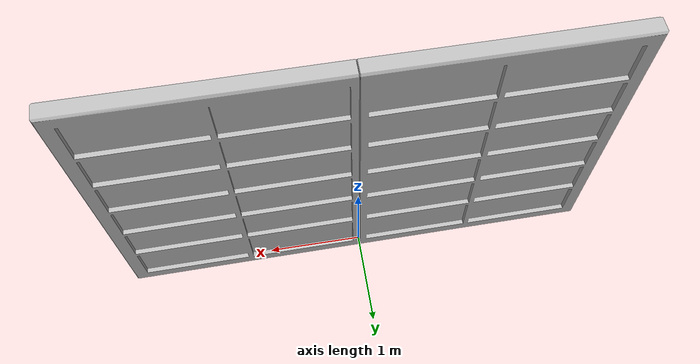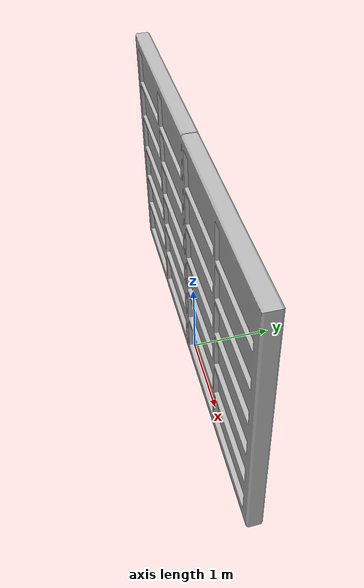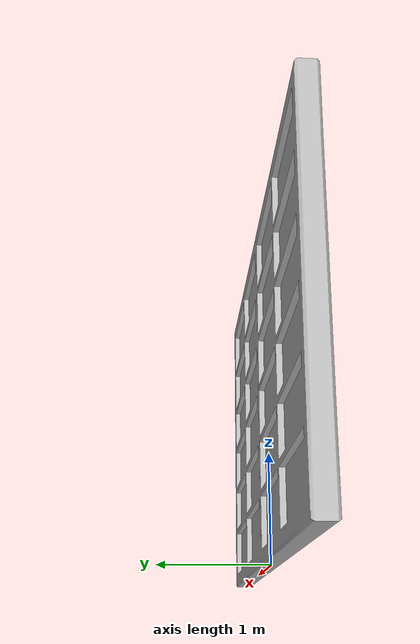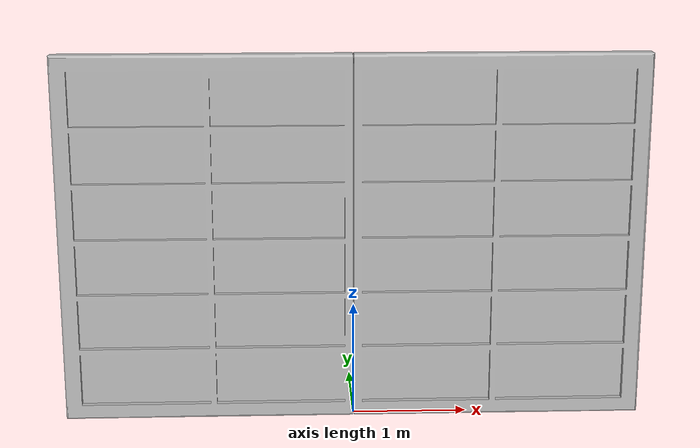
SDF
<?xml version="1.0" ?>
<sdf version="1.6">
  <model name="aws_robomaker_retail_DoorB_01">
    <link name="link">
      <inertial>
        <mass>50</mass>
        <inertia>
          <ixx>44.5597233</ixx>
          <ixy>0</ixy>
          <ixz>0</ixz>
          <iyy>151.69886</iyy>
          <iyz>0</iyz>
          <izz>107.805719</izz>
        </inertia>
      </inertial>
      <collision name="collision">
        <geometry>
          <mesh>
            <uri>file://models/aws_robomaker_retail_DoorB_01/meshes/aws_DoorB_01_collision.DAE</uri>
            <scale>1 1 1</scale>
          </mesh>
        </geometry>
      </collision>
      <visual name="visual">
	    <geometry>
          <mesh>
            <uri>file://models/aws_robomaker_retail_DoorB_01/meshes/aws_DoorB_01_visual.DAE</uri>
          </mesh>
        </geometry>
        <meta>
          <layer>2</layer>
        </meta>
      </visual>
    </link>
  <static>1</static>
  </model>
</sdf>
